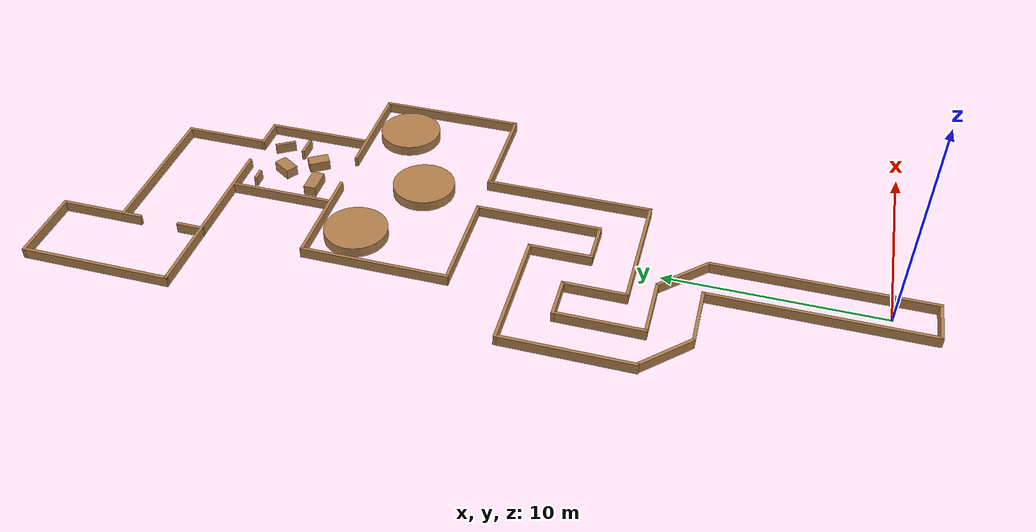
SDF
<?xml version='1.0'?>
<sdf version='1.6'>
  <model name='racetrack_static'>
    <pose frame=''>0 0 0 0 -0 0</pose>
    <!-- straight -->
    <link name='Wall_0'>
      <collision name='Wall_0_Collision'>
        <geometry>
          <box>
            <size>2 0.15 0.5</size>
          </box>
        </geometry>
        <pose frame=''>0 0 0.25 0 -0 0</pose>
      </collision>
      <visual name='Wall_0_Visual'>
        <pose frame=''>0 0 0.25 0 -0 0</pose>
        <geometry>
          <box>
            <size>2 0.15 0.5</size>
          </box>
        </geometry>
        <material>
          <script>
            <uri>file://media/materials/scripts/gazebo.material</uri>
            <name>Gazebo/Wood</name>
          </script>
          <ambient>1 1 1 1</ambient>
        </material>
      </visual>
      <pose frame=''>0 -1.925 0 0 -0 0</pose>
    </link>
    <link name='Wall_1'>
      <collision name='Wall_1_Collision'>
        <geometry>
          <box>
            <size>10 0.15 0.5</size>
          </box>
        </geometry>
        <pose frame=''>0 0 0.25 0 -0 0</pose>
      </collision>
      <visual name='Wall_1_Visual'>
        <pose frame=''>0 0 0.25 0 -0 0</pose>
        <geometry>
          <box>
            <size>10 0.15 0.5</size>
          </box>
        </geometry>
        <material>
          <script>
            <uri>file://media/materials/scripts/gazebo.material</uri>
            <name>Gazebo/Wood</name>
          </script>
          <ambient>1 1 1 1</ambient>
        </material>
      </visual>
      <pose frame=''>1 3 0 0 -0 -1.5708</pose>
    </link>
    <link name='Wall_2'>
      <collision name='Wall_2_Collision'>
        <geometry>
          <box>
            <size>10 0.15 0.5</size>
          </box>
        </geometry>
        <pose frame=''>0 0 0.25 0 -0 0</pose>
      </collision>
      <visual name='Wall_2_Visual'>
        <pose frame=''>0 0 0.25 0 -0 0</pose>
        <geometry>
          <box>
            <size>10 0.15 0.5</size>
          </box>
        </geometry>
        <material>
          <script>
            <uri>file://media/materials/scripts/gazebo.material</uri>
            <name>Gazebo/Wood</name>
          </script>
          <ambient>1 1 1 1</ambient>
        </material>
      </visual>
      <pose frame=''>-1 3 0 0 -0 -1.5708</pose>
    </link>
    <!-- turns -->
    <link name='Wall_3'>
      <collision name='Wall_3_Collision'>
        <geometry>
          <box>
            <size>3 0.15 0.5</size>
          </box>
        </geometry>
        <pose frame=''>0 0 0.25 0 -0 0</pose>
      </collision>
      <visual name='Wall_3_Visual'>
        <pose frame=''>0 0 0.25 0 -0 0</pose>
        <geometry>
          <box>
            <size>3 0.15 0.5</size>
          </box>
        </geometry>
        <material>
          <script>
            <uri>file://media/materials/scripts/gazebo.material</uri>
            <name>Gazebo/Wood</name>
          </script>
          <ambient>1 1 1 1</ambient>
        </material>
      </visual>
      <pose frame=''>-2.425 8 0 0 -0 0</pose>
    </link>
    <link name='Wall_4'>
      <collision name='Wall_4_Collision'>
        <geometry>
          <box>
            <size>3 0.15 0.5</size>
          </box>
        </geometry>
        <pose frame=''>0 0 0.25 0 -0 0</pose>
      </collision>
      <visual name='Wall_4_Visual'>
        <pose frame=''>0 0 0.25 0 -0 0</pose>
        <geometry>
          <box>
            <size>3 0.15 0.5</size>
          </box>
        </geometry>
        <material>
          <script>
            <uri>file://media/materials/scripts/gazebo.material</uri>
            <name>Gazebo/Wood</name>
          </script>
          <ambient>1 1 1 1</ambient>
        </material>
      </visual>
      <pose frame=''>-2.425 10 0 0 -0 0</pose>
    </link>
    <link name='Wall_5'>
      <collision name='Wall_5_Collision'>
        <geometry>
          <box>
            <size>6 0.15 0.5</size>
          </box>
        </geometry>
        <pose frame=''>0 0 0.25 0 -0 0</pose>
      </collision>
      <visual name='Wall_5_Visual'>
        <pose frame=''>0 0 0.25 0 -0 0</pose>
        <geometry>
          <box>
            <size>6 0.15 0.5</size>
          </box>
        </geometry>
        <material>
          <script>
            <uri>file://media/materials/scripts/gazebo.material</uri>
            <name>Gazebo/Wood</name>
          </script>
          <ambient>1 1 1 1</ambient>
        </material>
      </visual>
      <pose frame=''>-5.925 12.925 0 0 -0 -1.5708</pose>
    </link>
    <link name='Wall_6'>
      <collision name='Wall_6_Collision'>
        <geometry>
          <box>
            <size>4 0.15 0.5</size>
          </box>
        </geometry>
        <pose frame=''>0 0 0.25 0 -0 0</pose>
      </collision>
      <visual name='Wall_6_Visual'>
        <pose frame=''>0 0 0.25 0 -0 0</pose>
        <geometry>
          <box>
            <size>4 0.15 0.5</size>
          </box>
        </geometry>
        <material>
          <script>
            <uri>file://media/materials/scripts/gazebo.material</uri>
            <name>Gazebo/Wood</name>
          </script>
          <ambient>1 1 1 1</ambient>
        </material>
      </visual>
      <pose frame=''>-3.925 11.925 0 0 -0 -1.5708</pose>
    </link>
    <link name='Wall_7'>
      <collision name='Wall_7_Collision'>
        <geometry>
          <box>
            <size>2.85 0.15 0.5</size>
          </box>
        </geometry>
        <pose frame=''>0 0 0.25 0 -0 0</pose>
      </collision>
      <visual name='Wall_7_Visual'>
        <pose frame=''>0 0 0.25 0 -0 0</pose>
        <geometry>
          <box>
            <size>2.85 0.15 0.5</size>
          </box>
        </geometry>
        <material>
          <script>
            <uri>file://media/materials/scripts/gazebo.material</uri>
            <name>Gazebo/Wood</name>
          </script>
          <ambient>1 1 1 1</ambient>
        </material>
      </visual>
      <pose frame=''>0 9 0 0 -0 -0.7854</pose>
    </link>
    <link name='Wall_8'>
      <collision name='Wall_8_Collision'>
        <geometry>
          <box>
            <size>2.85 0.15 0.5</size>
          </box>
        </geometry>
        <pose frame=''>0 0 0.25 0 -0 0</pose>
      </collision>
      <visual name='Wall_8_Visual'>
        <pose frame=''>0 0 0.25 0 -0 0</pose>
        <geometry>
          <box>
            <size>2.85 0.15 0.5</size>
          </box>
        </geometry>
        <material>
          <script>
            <uri>file://media/materials/scripts/gazebo.material</uri>
            <name>Gazebo/Wood</name>
          </script>
          <ambient>1 1 1 1</ambient>
        </material>
      </visual>
      <pose frame=''>-4.9 9 0 0 -0 -0.7854</pose>
    </link>
    <!-- move away -->
    <link name='Wall_9'>
      <collision name='Wall_9_Collision'>
        <geometry>
          <box>
            <size>2 0.15 0.5</size>
          </box>
        </geometry>
        <pose frame=''>0 0 0.25 0 -0 0</pose>
      </collision>
      <visual name='Wall_9_Visual'>
        <pose frame=''>0 0 0.25 0 -0 0</pose>
        <geometry>
          <box>
            <size>2 0.15 0.5</size>
          </box>
        </geometry>
        <material>
          <script>
            <uri>file://media/materials/scripts/gazebo.material</uri>
            <name>Gazebo/Wood</name>
          </script>
          <ambient>1 1 1 1</ambient>
        </material>
      </visual>
      <pose frame=''>-3 14 0 0 -0 0</pose>
    </link>
    <link name='Wall_10'>
      <collision name='Wall_10_Collision'>
        <geometry>
          <box>
            <size>6 0.15 0.5</size>
          </box>
        </geometry>
        <pose frame=''>0 0 0.25 0 -0 0</pose>
      </collision>
      <visual name='Wall_10_Visual'>
        <pose frame=''>0 0 0.25 0 -0 0</pose>
        <geometry>
          <box>
            <size>6 0.15 0.5</size>
          </box>
        </geometry>
        <material>
          <script>
            <uri>file://media/materials/scripts/gazebo.material</uri>
            <name>Gazebo/Wood</name>
          </script>
          <ambient>1 1 1 1</ambient>
        </material>
      </visual>
      <pose frame=''>-3 16 0 0 -0 0</pose>
    </link>
    <link name='Wall_11'>
      <collision name='Wall_11_Collision'>
        <geometry>
          <box>
            <size>3 0.15 0.5</size>
          </box>
        </geometry>
        <pose frame=''>0 0 0.25 0 -0 0</pose>
      </collision>
      <visual name='Wall_11_Visual'>
        <pose frame=''>0 0 0.25 0 -0 0</pose>
        <geometry>
          <box>
            <size>3 0.15 0.5</size>
          </box>
        </geometry>
        <material>
          <script>
            <uri>file://media/materials/scripts/gazebo.material</uri>
            <name>Gazebo/Wood</name>
          </script>
          <ambient>1 1 1 1</ambient>
        </material>
      </visual>
      <pose frame=''>-2 12.575 0 0 -0 -1.5708</pose>
    </link>
    <link name='Wall_12'>
      <collision name='Wall_12_Collision'>
        <geometry>
          <box>
            <size>6 0.15 0.5</size>
          </box>
        </geometry>
        <pose frame=''>0 0 0.25 0 -0 0</pose>
      </collision>
      <visual name='Wall_12_Visual'>
        <pose frame=''>0 0 0.25 0 -0 0</pose>
        <geometry>
          <box>
            <size>6 0.15 0.5</size>
          </box>
        </geometry>
        <material>
          <script>
            <uri>file://media/materials/scripts/gazebo.material</uri>
            <name>Gazebo/Wood</name>
          </script>
          <ambient>1 1 1 1</ambient>
        </material>
      </visual>
      <pose frame=''>1 11.15 0 0 -0 0</pose>
    </link>
    <link name='Wall_13'>
      <collision name='Wall_13_Collision'>
        <geometry>
          <box>
            <size>3 0.15 0.5</size>
          </box>
        </geometry>
        <pose frame=''>0 0 0.25 0 -0 0</pose>
      </collision>
      <visual name='Wall_13_Visual'>
        <pose frame=''>0 0 0.25 0 -0 0</pose>
        <geometry>
          <box>
            <size>3 0.15 0.5</size>
          </box>
        </geometry>
        <material>
          <script>
            <uri>file://media/materials/scripts/gazebo.material</uri>
            <name>Gazebo/Wood</name>
          </script>
          <ambient>1 1 1 1</ambient>
        </material>
      </visual>
      <pose frame=''>0 14.575 0 0 -0 -1.5708</pose>
    </link>
    <link name='Wall_14'>
      <collision name='Wall_14_Collision'>
        <geometry>
          <box>
            <size>2 0.15 0.5</size>
          </box>
        </geometry>
        <pose frame=''>0 0 0.25 0 -0 0</pose>
      </collision>
      <visual name='Wall_14_Visual'>
        <pose frame=''>0 0 0.25 0 -0 0</pose>
        <geometry>
          <box>
            <size>2 0.15 0.5</size>
          </box>
        </geometry>
        <material>
          <script>
            <uri>file://media/materials/scripts/gazebo.material</uri>
            <name>Gazebo/Wood</name>
          </script>
          <ambient>1 1 1 1</ambient>
        </material>
      </visual>
      <pose frame=''>1 13.15 0 0 -0 0</pose>
    </link>
    <link name='Wall_15'>
      <collision name='Wall_15_Collision'>
        <geometry>
          <box>
            <size>6 0.15 0.5</size>
          </box>
        </geometry>
        <pose frame=''>0 0 0.25 0 -0 0</pose>
      </collision>
      <visual name='Wall_15_Visual'>
        <pose frame=''>0 0 0.25 0 -0 0</pose>
        <geometry>
          <box>
            <size>6 0.15 0.5</size>
          </box>
        </geometry>
        <material>
          <script>
            <uri>file://media/materials/scripts/gazebo.material</uri>
            <name>Gazebo/Wood</name>
          </script>
          <ambient>1 1 1 1</ambient>
        </material>
      </visual>
      <pose frame=''>2 16.075 0 0 -0 -1.5708</pose>
    </link>
    <link name='Wall_16'>
      <collision name='Wall_16_Collision'>
        <geometry>
          <box>
            <size>8 0.15 0.5</size>
          </box>
        </geometry>
        <pose frame=''>0 0 0.25 0 -0 0</pose>
      </collision>
      <visual name='Wall_16_Visual'>
        <pose frame=''>0 0 0.25 0 -0 0</pose>
        <geometry>
          <box>
            <size>8 0.15 0.5</size>
          </box>
        </geometry>
        <material>
          <script>
            <uri>file://media/materials/scripts/gazebo.material</uri>
            <name>Gazebo/Wood</name>
          </script>
          <ambient>1 1 1 1</ambient>
        </material>
      </visual>
      <pose frame=''>4 15.075 0 0 -0 -1.5708</pose>
    </link>
    <!-- Round -->
    <link name='Wall_17'>
      <collision name='Wall_17_Collision'>
        <geometry>
          <box>
            <size>5 0.15 0.5</size>
          </box>
        </geometry>
        <pose frame=''>0 0 0.25 0 -0 0</pose>
      </collision>
      <visual name='Wall_17_Visual'>
        <pose frame=''>0 0 0.25 0 -0 0</pose>
        <geometry>
          <box>
            <size>5 0.15 0.5</size>
          </box>
        </geometry>
        <material>
          <script>
            <uri>file://media/materials/scripts/gazebo.material</uri>
            <name>Gazebo/Wood</name>
          </script>
          <ambient>1 1 1 1</ambient>
        </material>
      </visual>
      <pose frame=''>-0.5 19 0 0 -0 0</pose>
    </link>
    <link name='Wall_18'>
      <collision name='Wall_18_Collision'>
        <geometry>
          <box>
            <size>5 0.15 0.5</size>
          </box>
        </geometry>
        <pose frame=''>0 0 0.25 0 -0 0</pose>
      </collision>
      <visual name='Wall_18_Visual'>
        <pose frame=''>0 0 0.25 0 -0 0</pose>
        <geometry>
          <box>
            <size>5 0.15 0.5</size>
          </box>
        </geometry>
        <material>
          <script>
            <uri>file://media/materials/scripts/gazebo.material</uri>
            <name>Gazebo/Wood</name>
          </script>
          <ambient>1 1 1 1</ambient>
        </material>
      </visual>
      <pose frame=''>6.5 19 0 0 -0 0</pose>
    </link>
    <link name='round_obstacle'>
      <collision name='round_obstacle_Collision'>
        <geometry>
          <cylinder>
            <radius>1.5</radius>
            <length>0.5</length>
          </cylinder>
        </geometry>
        <pose frame=''>0 0 0.25 0 -0 0</pose>
      </collision>
      <visual name='round_obstacle_Visual'>
        <pose frame=''>0 0 0.25 0 -0 0</pose>
        <geometry>
          <cylinder>
            <radius>1.5</radius>
            <length>0.5</length>
          </cylinder>
        </geometry>
        <material>
          <script>
            <uri>file://media/materials/scripts/gazebo.material</uri>
            <name>Gazebo/Wood</name>
          </script>
          <ambient>1 1 1 1</ambient>
        </material>
      </visual>
      <pose frame=''>3 22 0 0 -0 1.5708</pose>
    </link>
    <link name='round_obstacle_1'>
      <collision name='round_obstacle_1_Collision'>
        <geometry>
          <cylinder>
            <radius>1.5</radius>
            <length>0.5</length>
          </cylinder>
        </geometry>
        <pose frame=''>0 0 0.25 0 -0 0</pose>
      </collision>
      <visual name='round_obstacle_1_Visual'>
        <pose frame=''>0 0 0.25 0 -0 0</pose>
        <geometry>
          <cylinder>
            <radius>1.5</radius>
            <length>0.5</length>
          </cylinder>
        </geometry>
        <material>
          <script>
            <uri>file://media/materials/scripts/gazebo.material</uri>
            <name>Gazebo/Wood</name>
          </script>
          <ambient>1 1 1 1</ambient>
        </material>
      </visual>
      <pose frame=''>-1 24 0 0 -0 1.5708</pose>
    </link>
    <link name='round_obstacle_2'>
      <collision name='round_obstacle_2_Collision'>
        <geometry>
          <cylinder>
            <radius>1.5</radius>
            <length>0.5</length>
          </cylinder>
        </geometry>
        <pose frame=''>0 0 0.25 0 -0 0</pose>
      </collision>
      <visual name='round_obstacle_2_Visual'>
        <pose frame=''>0 0 0.25 0 -0 0</pose>
        <geometry>
          <cylinder>
            <radius>1.5</radius>
            <length>0.5</length>
          </cylinder>
        </geometry>
        <material>
          <script>
            <uri>file://media/materials/scripts/gazebo.material</uri>
            <name>Gazebo/Wood</name>
          </script>
          <ambient>1 1 1 1</ambient>
        </material>
      </visual>
      <pose frame=''>7 24 0 0 -0 1.5708</pose>
    </link>
    <link name='Wall_19'>
      <collision name='Wall_19_Collision'>
        <geometry>
          <box>
            <size>7 0.15 0.5</size>
          </box>
        </geometry>
        <pose frame=''>0 0 0.25 0 -0 0</pose>
      </collision>
      <visual name='Wall_19_Visual'>
        <pose frame=''>0 0 0.25 0 -0 0</pose>
        <geometry>
          <box>
            <size>7 0.15 0.5</size>
          </box>
        </geometry>
        <material>
          <script>
            <uri>file://media/materials/scripts/gazebo.material</uri>
            <name>Gazebo/Wood</name>
          </script>
          <ambient>1 1 1 1</ambient>
        </material>
      </visual>
      <pose frame=''>-3 22.425 0 0 -0 -1.5708</pose>
    </link>
    <link name='Wall_20'>
      <collision name='Wall_20_Collision'>
        <geometry>
          <box>
            <size>7 0.15 0.5</size>
          </box>
        </geometry>
        <pose frame=''>0 0 0.25 0 -0 0</pose>
      </collision>
      <visual name='Wall_20_Visual'>
        <pose frame=''>0 0 0.25 0 -0 0</pose>
        <geometry>
          <box>
            <size>7 0.15 0.5</size>
          </box>
        </geometry>
        <material>
          <script>
            <uri>file://media/materials/scripts/gazebo.material</uri>
            <name>Gazebo/Wood</name>
          </script>
          <ambient>1 1 1 1</ambient>
        </material>
      </visual>
      <pose frame=''>9 22.425 0 0 -0 -1.5708</pose>
    </link>
    <link name='Wall_21'>
      <collision name='Wall_21_Collision'>
        <geometry>
          <box>
            <size>5 0.15 0.5</size>
          </box>
        </geometry>
        <pose frame=''>0 0 0.25 0 -0 0</pose>
      </collision>
      <visual name='Wall_21_Visual'>
        <pose frame=''>0 0 0.25 0 -0 0</pose>
        <geometry>
          <box>
            <size>5 0.15 0.5</size>
          </box>
        </geometry>
        <material>
          <script>
            <uri>file://media/materials/scripts/gazebo.material</uri>
            <name>Gazebo/Wood</name>
          </script>
          <ambient>1 1 1 1</ambient>
        </material>
      </visual>
      <pose frame=''>-0.5 25.85 0 0 -0 0</pose>
    </link>
    <link name='Wall_22'>
      <collision name='Wall_22_Collision'>
        <geometry>
          <box>
            <size>5 0.15 0.5</size>
          </box>
        </geometry>
        <pose frame=''>0 0 0.25 0 -0 0</pose>
      </collision>
      <visual name='Wall_22_Visual'>
        <pose frame=''>0 0 0.25 0 -0 0</pose>
        <geometry>
          <box>
            <size>5 0.15 0.5</size>
          </box>
        </geometry>
        <material>
          <script>
            <uri>file://media/materials/scripts/gazebo.material</uri>
            <name>Gazebo/Wood</name>
          </script>
          <ambient>1 1 1 1</ambient>
        </material>
      </visual>
      <pose frame=''>6.5 25.85 0 0 -0 0</pose>
    </link>
    <!-- static obst -->
    <link name='Wall_23'>
      <collision name='Wall_23_Collision'>
        <geometry>
          <box>
            <size>5 0.15 0.5</size>
          </box>
        </geometry>
        <pose frame=''>0 0 0.25 0 -0 0</pose>
      </collision>
      <visual name='Wall_23_Visual'>
        <pose frame=''>0 0 0.25 0 -0 0</pose>
        <geometry>
          <box>
            <size>5 0.15 0.5</size>
          </box>
        </geometry>
        <material>
          <script>
            <uri>file://media/materials/scripts/gazebo.material</uri>
            <name>Gazebo/Wood</name>
          </script>
          <ambient>1 1 1 1</ambient>
        </material>
      </visual>
      <pose frame=''>0.5 28.425 0 0 -0 -1.5708</pose>
    </link>
    <link name='Wall_24'>
      <collision name='Wall_24_Collision'>
        <geometry>
          <box>
            <size>5 0.15 0.5</size>
          </box>
        </geometry>
        <pose frame=''>0 0 0.25 0 -0 0</pose>
      </collision>
      <visual name='Wall_24_Visual'>
        <pose frame=''>0 0 0.25 0 -0 0</pose>
        <geometry>
          <box>
            <size>5 0.15 0.5</size>
          </box>
        </geometry>
        <material>
          <script>
            <uri>file://media/materials/scripts/gazebo.material</uri>
            <name>Gazebo/Wood</name>
          </script>
          <ambient>1 1 1 1</ambient>
        </material>
      </visual>
      <pose frame=''>5.5 28.425 0 0 -0 -1.5708</pose>
    </link>
    <link name='Wall_25'>
      <collision name='Wall_25_Collision'>
        <geometry>
          <box>
            <size>9 0.15 0.5</size>
          </box>
        </geometry>
        <pose frame=''>0 0 0.25 0 -0 0</pose>
      </collision>
      <visual name='Wall_25_Visual'>
        <pose frame=''>0 0 0.25 0 -0 0</pose>
        <geometry>
          <box>
            <size>9 0.15 0.5</size>
          </box>
        </geometry>
        <material>
          <script>
            <uri>file://media/materials/scripts/gazebo.material</uri>
            <name>Gazebo/Wood</name>
          </script>
          <ambient>1 1 1 1</ambient>
        </material>
      </visual>
      <pose frame=''>-2 30.85 0 0 -0 0</pose>
    </link>
    <link name='Wall_26'>
      <collision name='Wall_26_Collision'>
        <geometry>
          <box>
            <size>1.5 0.15 0.5</size>
          </box>
        </geometry>
        <pose frame=''>0 0 0.25 0 -0 0</pose>
      </collision>
      <visual name='Wall_26_Visual'>
        <pose frame=''>0 0 0.25 0 -0 0</pose>
        <geometry>
          <box>
            <size>1.5 0.15 0.5</size>
          </box>
        </geometry>
        <material>
          <script>
            <uri>file://media/materials/scripts/gazebo.material</uri>
            <name>Gazebo/Wood</name>
          </script>
          <ambient>1 1 1 1</ambient>
        </material>
      </visual>
      <pose frame=''>4.75 30.85 0 0 -0 0</pose>
    </link>
    <link name='sobst_0'>
      <collision name='sobst_0_Collision'>
        <geometry>
          <box>
            <size>1.2 0.6 0.5</size>
          </box>
        </geometry>
        <pose frame=''>0 0 0.25 0 -0 0</pose>
      </collision>
      <visual name='sobst_0_Visual'>
        <pose frame=''>0 0 0.25 0 -0 0</pose>
        <geometry>
          <box>
            <size>1.2 0.6 0.5</size>
          </box>
        </geometry>
        <material>
          <script>
            <uri>file://media/materials/scripts/gazebo.material</uri>
            <name>Gazebo/Wood</name>
          </script>
          <ambient>1 1 1 1</ambient>
        </material>
      </visual>
      <pose frame=''>1.8 27.2 0 0 -0 0</pose>
    </link>
    <link name='sobst_1'>
      <collision name='sobst_1_Collision'>
        <geometry>
          <box>
            <size>1 0.6 0.5</size>
          </box>
        </geometry>
        <pose frame=''>0 0 0.25 0 -0 0</pose>
      </collision>
      <visual name='sobst_1_Visual'>
        <pose frame=''>0 0 0.25 0 -0 0</pose>
        <geometry>
          <box>
            <size>1 0.6 0.5</size>
          </box>
        </geometry>
        <material>
          <script>
            <uri>file://media/materials/scripts/gazebo.material</uri>
            <name>Gazebo/Wood</name>
          </script>
          <ambient>1 1 1 1</ambient>
        </material>
      </visual>
      <pose frame=''>3.4 27.6 0 0 -0 -1</pose>
    </link>
    <link name='sobst_2'>
      <collision name='sobst_2_Collision'>
        <geometry>
          <box>
            <size>1 0.6 0.5</size>
          </box>
        </geometry>
        <pose frame=''>0 0 0.25 0 -0 0</pose>
      </collision>
      <visual name='sobst_2_Visual'>
        <pose frame=''>0 0 0.25 0 -0 0</pose>
        <geometry>
          <box>
            <size>1 0.6 0.5</size>
          </box>
        </geometry>
        <material>
          <script>
            <uri>file://media/materials/scripts/gazebo.material</uri>
            <name>Gazebo/Wood</name>
          </script>
          <ambient>1 1 1 1</ambient>
        </material>
      </visual>
      <pose frame=''>2.6 29 0 0 -0 1</pose>
    </link>
    <link name='sobst_3'>
      <collision name='sobst_3_Collision'>
        <geometry>
          <box>
            <size>1 0.15 0.5</size>
          </box>
        </geometry>
        <pose frame=''>0 0 0.25 0 -0 0</pose>
      </collision>
      <visual name='sobst_3_Visual'>
        <pose frame=''>0 0 0.25 0 -0 0</pose>
        <geometry>
          <box>
            <size>1 0.15 0.5</size>
          </box>
        </geometry>
        <material>
          <script>
            <uri>file://media/materials/scripts/gazebo.material</uri>
            <name>Gazebo/Wood</name>
          </script>
          <ambient>1 1 1 1</ambient>
        </material>
      </visual>
      <pose frame=''>4.3 28.6 0 0 -0 0</pose>
    </link>
    <link name='sobst_4'>
      <collision name='sobst_4_Collision'>
        <geometry>
          <box>
            <size>0.6 0.15 0.5</size>
          </box>
        </geometry>
        <pose frame=''>0 0 0.25 0 -0 0</pose>
      </collision>
      <visual name='sobst_4_Visual'>
        <pose frame=''>0 0 0.25 0 -0 0</pose>
        <geometry>
          <box>
            <size>0.6 0.15 0.5</size>
          </box>
        </geometry>
        <material>
          <script>
            <uri>file://media/materials/scripts/gazebo.material</uri>
            <name>Gazebo/Wood</name>
          </script>
          <ambient>1 1 1 1</ambient>
        </material>
      </visual>
      <pose frame=''>1.5 30 0 0 -0 0</pose>
    </link>
    <link name='sobst_5'>
      <collision name='sobst_5_Collision'>
        <geometry>
          <box>
            <size>1 0.15 0.5</size>
          </box>
        </geometry>
        <pose frame=''>0 0 0.25 0 -0 0</pose>
      </collision>
      <visual name='sobst_5_Visual'>
        <pose frame=''>0 0 0.25 0 -0 0</pose>
        <geometry>
          <box>
            <size>1 0.15 0.5</size>
          </box>
        </geometry>
        <material>
          <script>
            <uri>file://media/materials/scripts/gazebo.material</uri>
            <name>Gazebo/Wood</name>
          </script>
          <ambient>1 1 1 1</ambient>
        </material>
      </visual>
      <pose frame=''>4.2 29.7 0 0 -0 -1</pose>
    </link>
    <!-- moving obst -->
    <link name='Wall_27'>
      <collision name='Wall_27_Collision'>
        <geometry>
          <box>
            <size>4 0.15 0.5</size>
          </box>
        </geometry>
        <pose frame=''>0 0 0.25 0 -0 0</pose>
      </collision>
      <visual name='Wall_27_Visual'>
        <pose frame=''>0 0 0.25 0 -0 0</pose>
        <geometry>
          <box>
            <size>4 0.15 0.5</size>
          </box>
        </geometry>
        <material>
          <script>
            <uri>file://media/materials/scripts/gazebo.material</uri>
            <name>Gazebo/Wood</name>
          </script>
          <ambient>1 1 1 1</ambient>
        </material>
      </visual>
      <pose frame=''>4.075 32.925 0 0 -0 -1.5708</pose>
    </link>
    <link name='Wall_28'>
      <collision name='Wall_28_Collision'>
        <geometry>
          <box>
            <size>7 0.15 0.5</size>
          </box>
        </geometry>
        <pose frame=''>0 0 0.25 0 -0 0</pose>
      </collision>
      <visual name='Wall_28_Visual'>
        <pose frame=''>0 0 0.25 0 -0 0</pose>
        <geometry>
          <box>
            <size>7 0.15 0.5</size>
          </box>
        </geometry>
        <material>
          <script>
            <uri>file://media/materials/scripts/gazebo.material</uri>
            <name>Gazebo/Wood</name>
          </script>
          <ambient>1 1 1 1</ambient>
        </material>
      </visual>
      <pose frame=''>0.5 34.85 0 0 -0 0</pose>
    </link>
    <link name='Wall_29'>
      <collision name='Wall_29_Collision'>
        <geometry>
          <box>
            <size>4 0.15 0.5</size>
          </box>
        </geometry>
        <pose frame=''>0 0 0.25 0 -0 0</pose>
      </collision>
      <visual name='Wall_29_Visual'>
        <pose frame=''>0 0 0.25 0 -0 0</pose>
        <geometry>
          <box>
            <size>4 0.15 0.5</size>
          </box>
        </geometry>
        <material>
          <script>
            <uri>file://media/materials/scripts/gazebo.material</uri>
            <name>Gazebo/Wood</name>
          </script>
          <ambient>1 1 1 1</ambient>
        </material>
      </visual>
      <pose frame=''>-2.95 35.925 0 0 -0 -1.5708</pose>
    </link>
    <link name='Wall_30'>
      <collision name='Wall_30_Collision'>
        <geometry>
          <box>
            <size>1.3 0.15 0.5</size>
          </box>
        </geometry>
        <pose frame=''>0 0 0.25 0 -0 0</pose>
      </collision>
      <visual name='Wall_30_Visual'>
        <pose frame=''>0 0 0.25 0 -0 0</pose>
        <geometry>
          <box>
            <size>1.3 0.15 0.5</size>
          </box>
        </geometry>
        <material>
          <script>
            <uri>file://media/materials/scripts/gazebo.material</uri>
            <name>Gazebo/Wood</name>
          </script>
          <ambient>1 1 1 1</ambient>
        </material>
      </visual>
      <pose frame=''>-2.95 31.425 0 0 -0 -1.5708</pose>
    </link>
    <!-- gate -->
    <link name='Wall_31'>
      <collision name='Wall_31_Collision'>
        <geometry>
          <box>
            <size>7.15 0.15 0.5</size>
          </box>
        </geometry>
        <pose frame=''>0 0 0.25 0 -0 0</pose>
      </collision>
      <visual name='Wall_31_Visual'>
        <pose frame=''>0 0 0.25 0 -0 0</pose>
        <geometry>
          <box>
            <size>7.15 0.15 0.5</size>
          </box>
        </geometry>
        <material>
          <script>
            <uri>file://media/materials/scripts/gazebo.material</uri>
            <name>Gazebo/Wood</name>
          </script>
          <ambient>1 1 1 1</ambient>
        </material>
      </visual>
      <pose frame=''>-6.45 34.35 0 0 -0 -1.5708</pose>
    </link>
    <link name='Wall_32'>
      <collision name='Wall_32_Collision'>
        <geometry>
          <box>
            <size>3.65 0.15 0.5</size>
          </box>
        </geometry>
        <pose frame=''>0 0 0.25 0 -0 0</pose>
      </collision>
      <visual name='Wall_32_Visual'>
        <pose frame=''>0 0 0.25 0 -0 0</pose>
        <geometry>
          <box>
            <size>3.65 0.15 0.5</size>
          </box>
        </geometry>
        <material>
          <script>
            <uri>file://media/materials/scripts/gazebo.material</uri>
            <name>Gazebo/Wood</name>
          </script>
          <ambient>1 1 1 1</ambient>
        </material>
      </visual>
      <pose frame=''>-4.7 37.9 0 0 -0 0</pose>
    </link>
    <static>1</static>
  </model>
</sdf>
